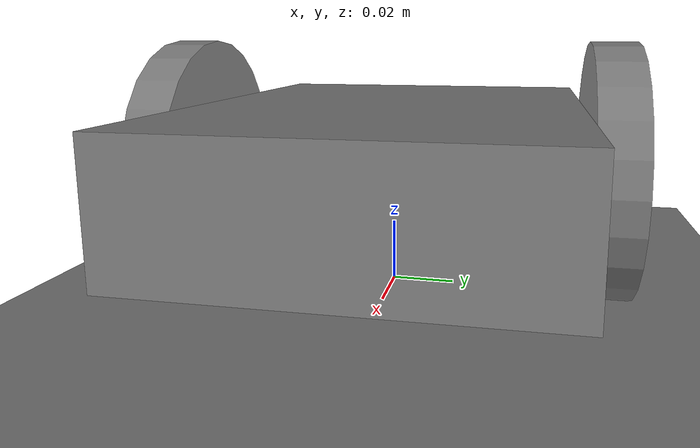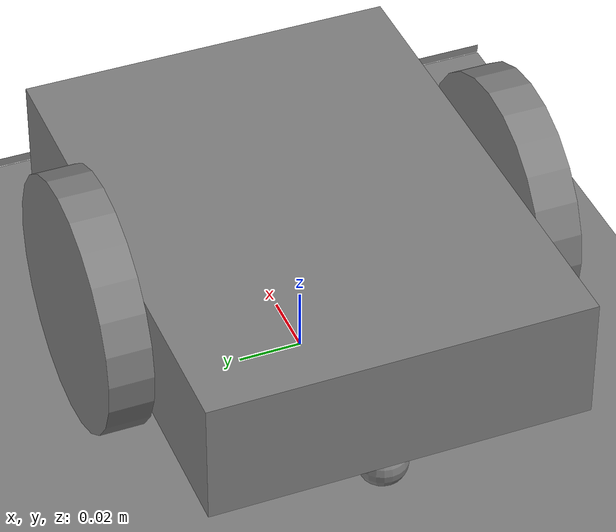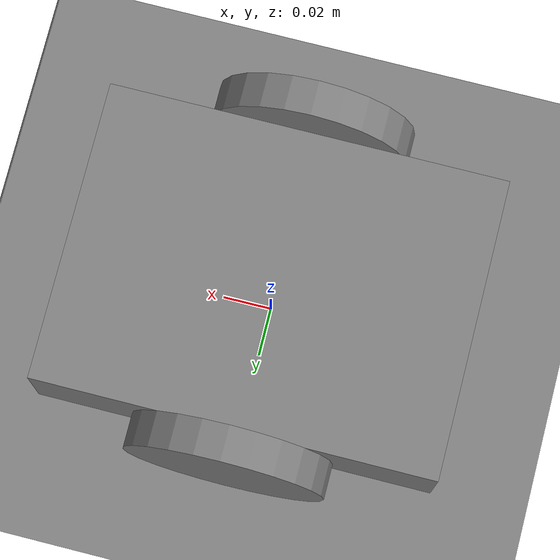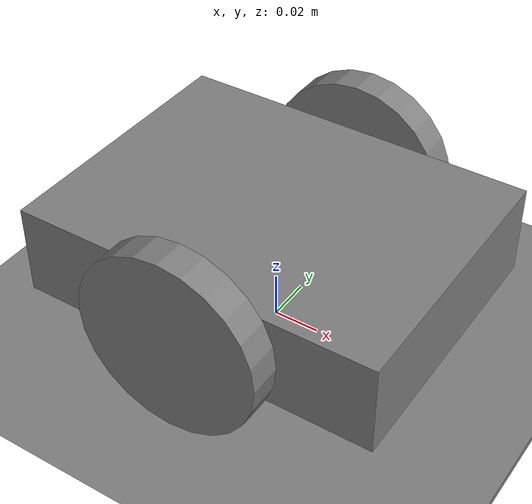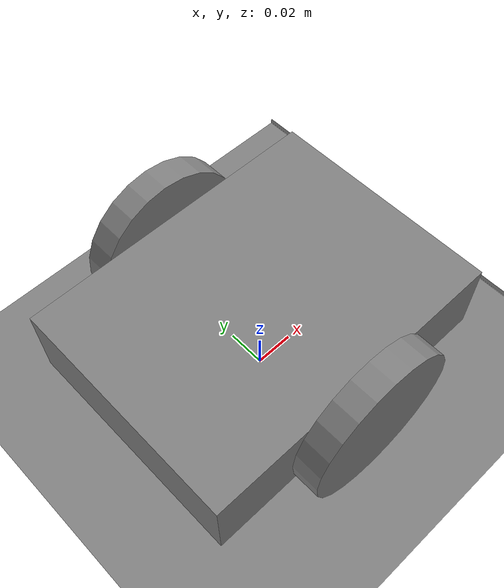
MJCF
<!-- Desk rover, simplified, Ø80 mm wheels. Generated by the worker in M4; hand-written for M0. -->
<mujoco model="desk-rover">
  <option timestep="0.002" integrator="implicitfast"/>
  <worldbody>
    <geom name="floor" type="plane" size="5 5 0.1"/>
    <!-- 8 mm pile compressed to 3 mm under the rover: a hard 8 mm box is a curb that jams the Ø16 caster ball -->
    <geom name="rug" type="box" pos="0.9 0 0.0015" size="0.6 1 0.0015" friction="1.4 0.02 0.002"/>
    <body name="rover" pos="0 0 0.04">
      <freejoint/>
      <geom name="chassis" type="box" size="0.08 0.06 0.02" mass="0.25"/>
      <body name="wheel_l_body" pos="0 0.068 0">
        <joint name="wheel_l_joint" type="hinge" axis="0 1 0"/>
        <geom name="wheel_l" type="cylinder" size="0.04 0.007" euler="90 0 0" mass="0.018"/>
      </body>
      <body name="wheel_r_body" pos="0 -0.068 0">
        <joint name="wheel_r_joint" type="hinge" axis="0 1 0"/>
        <geom name="wheel_r" type="cylinder" size="0.04 0.007" euler="90 0 0" mass="0.018"/>
      </body>
      <geom name="caster" type="sphere" pos="-0.065 0 -0.032" size="0.008" mass="0.006"/>
    </body>
  </worldbody>
  <actuator>
    <!-- ctrl is wheel speed in rad/s; 16.755 rad/s = 160 rpm, the same gearmotor for every wheel size -->
    <velocity name="drive_l" joint="wheel_l_joint" kv="0.05" ctrlrange="-16.755 16.755"/>
    <velocity name="drive_r" joint="wheel_r_joint" kv="0.05" ctrlrange="-16.755 16.755"/>
  </actuator>
</mujoco>
